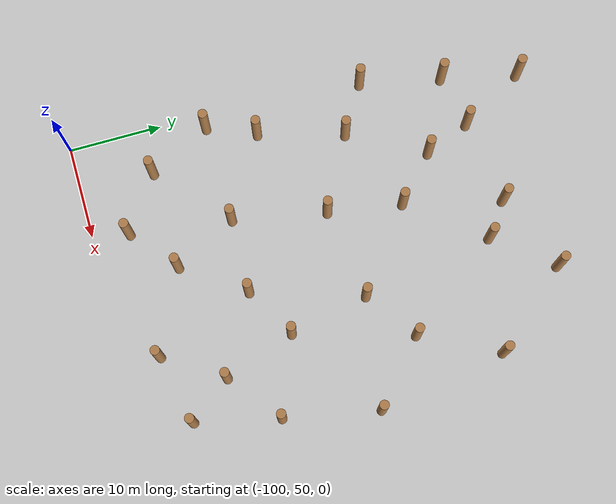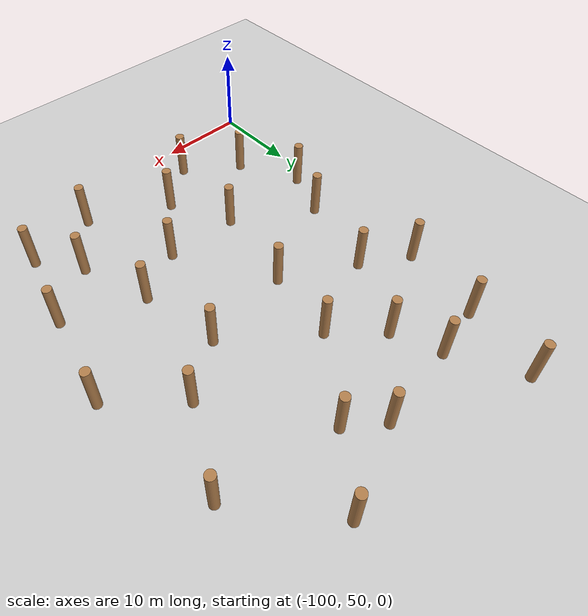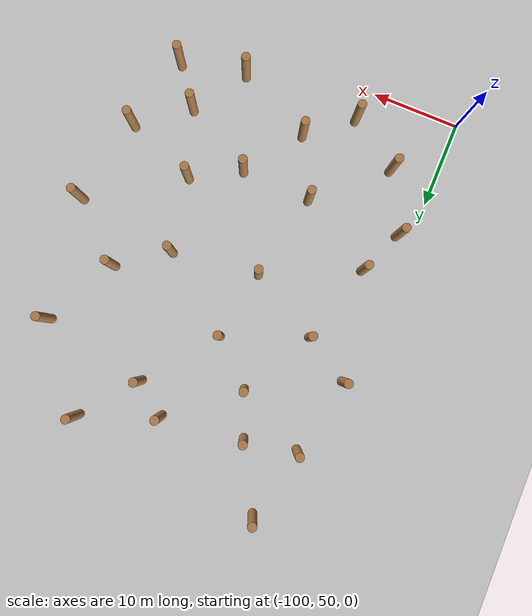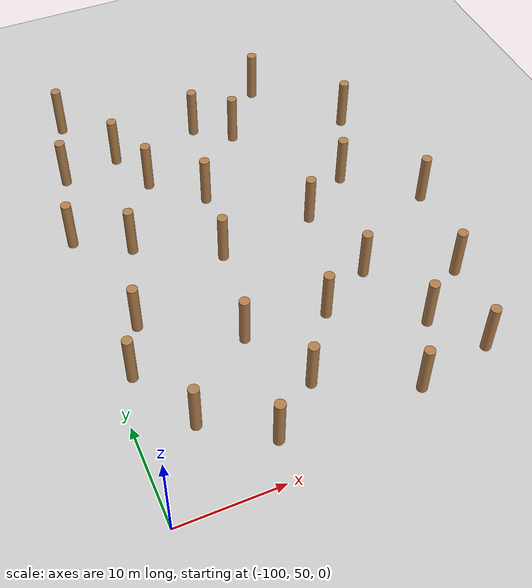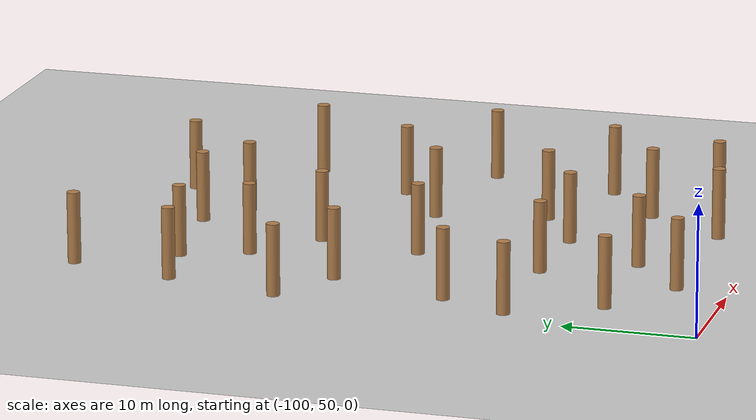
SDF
<sdf version="1.6">
 <world name="default">
  <model name="ground_plane">
   <static>1</static>
   <link name="link">
    <collision name="collision">
     <geometry><plane><normal>0 0 1</normal><size>100 100</size></plane></geometry>
     <surface><friction><ode><mu>100</mu><mu2>50</mu2></ode></friction></surface>
    </collision>
    <visual name="visual">
     <cast_shadows>0</cast_shadows>
     <geometry><plane><normal>0 0 1</normal><size>100 100</size></plane></geometry>
     <material>
      <script><uri>file://media/materials/scripts/gazebo.material</uri><name>Gazebo/Grey</name></script>
     </material>
    </visual>
   </link>
  </model>
  <model name="WoodPillars">
   <link name="link">
    <inertial>
     <mass>1</mass>
     <inertia><ixx>0.145833</ixx><ixy>0</ixy><ixz>0</ixz><iyy>0.145833</iyy><iyz>0</iyz><izz>0.125</izz></inertia>
    </inertial>
    <visual name="visual">
     <geometry><cylinder><radius>0.5</radius><length>5.50507</length></cylinder></geometry>
     <material>
      <script><name>Gazebo/Wood</name><uri>file://media/materials/scripts/gazebo.material</uri></script>
     </material>
    </visual>
    <collision name="collision">
     <geometry><cylinder><radius>0.5</radius><length>5.50507</length></cylinder></geometry>
     <surface>
      <friction>
       <ode><mu>1</mu><mu2>1</mu2><fdir1>0 0 0</fdir1><slip1>0</slip1><slip2>0</slip2></ode>
       <torsional>
        <coefficient>1</coefficient>
        <patch_radius>0</patch_radius>
        <surface_radius>0</surface_radius>
        <use_patch_radius>1</use_patch_radius>
        <ode><slip>0</slip></ode>
       </torsional>
      </friction>
      <bounce><restitution_coefficient>0</restitution_coefficient><threshold>1e+06</threshold></bounce>
      <contact>
       <collide_without_contact>0</collide_without_contact>
       <collide_without_contact_bitmask>1</collide_without_contact_bitmask>
       <collide_bitmask>1</collide_bitmask>
       <ode>
        <soft_cfm>0</soft_cfm>
        <soft_erp>0.2</soft_erp>
        <kp>1e+13</kp>
        <kd>1</kd>
        <max_vel>0.01</max_vel>
        <min_depth>0</min_depth>
       </ode>
       <bullet>
        <split_impulse>1</split_impulse>
        <split_impulse_penetration_threshold>-0.01</split_impulse_penetration_threshold>
        <soft_cfm>0</soft_cfm>
        <soft_erp>0.2</soft_erp>
        <kp>1e+13</kp>
        <kd>1</kd>
       </bullet>
      </contact>
     </surface>
    </collision>
   </link>
   <link name="link_clone">
    <inertial>
     <mass>1</mass>
     <inertia><ixx>0.145833</ixx><ixy>0</ixy><ixz>0</ixz><iyy>0.145833</iyy><iyz>0</iyz><izz>0.125</izz></inertia>
    </inertial>
    <pose>17.6954 -2.91348 -2e-06 0 -0 -0.001289</pose>
    <visual name="visual">
     <geometry><cylinder><radius>0.5</radius><length>5.50507</length></cylinder></geometry>
     <material>
      <script><name>Gazebo/Wood</name><uri>file://media/materials/scripts/gazebo.material</uri></script>
      <shader type="pixel"/>
     </material>
    </visual>
    <collision name="collision">
     <geometry><cylinder><radius>0.5</radius><length>5.50507</length></cylinder></geometry>
     <surface>
      <friction>
       <ode><mu>1</mu><mu2>1</mu2><fdir1>0 0 0</fdir1><slip1>0</slip1><slip2>0</slip2></ode>
       <torsional>
        <coefficient>1</coefficient>
        <patch_radius>0</patch_radius>
        <surface_radius>0</surface_radius>
        <use_patch_radius>1</use_patch_radius>
        <ode><slip>0</slip></ode>
       </torsional>
      </friction>
      <bounce><restitution_coefficient>0</restitution_coefficient><threshold>1e+06</threshold></bounce>
      <contact>
       <collide_without_contact>0</collide_without_contact>
       <collide_without_contact_bitmask>1</collide_without_contact_bitmask>
       <collide_bitmask>1</collide_bitmask>
       <ode>
        <soft_cfm>0</soft_cfm>
        <soft_erp>0.2</soft_erp>
        <kp>1e+13</kp>
        <kd>1</kd>
        <max_vel>0.01</max_vel>
        <min_depth>0</min_depth>
       </ode>
       <bullet>
        <split_impulse>1</split_impulse>
        <split_impulse_penetration_threshold>-0.01</split_impulse_penetration_threshold>
        <soft_cfm>0</soft_cfm>
        <soft_erp>0.2</soft_erp>
        <kp>1e+13</kp>
        <kd>1</kd>
       </bullet>
      </contact>
     </surface>
    </collision>
   </link>
   <link name="link_clone_10">
    <inertial>
     <mass>1</mass>
     <inertia><ixx>0.145833</ixx><ixy>0</ixy><ixz>0</ixz><iyy>0.145833</iyy><iyz>0</iyz><izz>0.125</izz></inertia>
    </inertial>
    <pose>2.50237 12.8939 0 0 -0 -0.001289</pose>
    <visual name="visual">
     <geometry><cylinder><radius>0.5</radius><length>5.50507</length></cylinder></geometry>
     <material>
      <script><name>Gazebo/Wood</name><uri>file://media/materials/scripts/gazebo.material</uri></script>
      <shader type="pixel"/>
     </material>
    </visual>
    <collision name="collision">
     <geometry><cylinder><radius>0.5</radius><length>5.50507</length></cylinder></geometry>
     <surface>
      <friction>
       <ode><mu>1</mu><mu2>1</mu2><fdir1>0 0 0</fdir1><slip1>0</slip1><slip2>0</slip2></ode>
       <torsional>
        <coefficient>1</coefficient>
        <patch_radius>0</patch_radius>
        <surface_radius>0</surface_radius>
        <use_patch_radius>1</use_patch_radius>
        <ode><slip>0</slip></ode>
       </torsional>
      </friction>
      <bounce><restitution_coefficient>0</restitution_coefficient><threshold>1e+06</threshold></bounce>
      <contact>
       <collide_without_contact>0</collide_without_contact>
       <collide_without_contact_bitmask>1</collide_without_contact_bitmask>
       <collide_bitmask>1</collide_bitmask>
       <ode>
        <soft_cfm>0</soft_cfm>
        <soft_erp>0.2</soft_erp>
        <kp>1e+13</kp>
        <kd>1</kd>
        <max_vel>0.01</max_vel>
        <min_depth>0</min_depth>
       </ode>
       <bullet>
        <split_impulse>1</split_impulse>
        <split_impulse_penetration_threshold>-0.01</split_impulse_penetration_threshold>
        <soft_cfm>0</soft_cfm>
        <soft_erp>0.2</soft_erp>
        <kp>1e+13</kp>
        <kd>1</kd>
       </bullet>
      </contact>
     </surface>
    </collision>
   </link>
   <link name="link_clone_11">
    <inertial>
     <mass>1</mass>
     <inertia><ixx>0.145833</ixx><ixy>0</ixy><ixz>0</ixz><iyy>0.145833</iyy><iyz>0</iyz><izz>0.125</izz></inertia>
    </inertial>
    <pose>20.1245 17.4079 -2e-06 0 -0 -0.001289</pose>
    <visual name="visual">
     <geometry><cylinder><radius>0.5</radius><length>5.50507</length></cylinder></geometry>
     <material>
      <script><name>Gazebo/Wood</name><uri>file://media/materials/scripts/gazebo.material</uri></script>
      <shader type="pixel"/>
     </material>
    </visual>
    <collision name="collision">
     <geometry><cylinder><radius>0.5</radius><length>5.50507</length></cylinder></geometry>
     <surface>
      <friction>
       <ode><mu>1</mu><mu2>1</mu2><fdir1>0 0 0</fdir1><slip1>0</slip1><slip2>0</slip2></ode>
       <torsional>
        <coefficient>1</coefficient>
        <patch_radius>0</patch_radius>
        <surface_radius>0</surface_radius>
        <use_patch_radius>1</use_patch_radius>
        <ode><slip>0</slip></ode>
       </torsional>
      </friction>
      <bounce><restitution_coefficient>0</restitution_coefficient><threshold>1e+06</threshold></bounce>
      <contact>
       <collide_without_contact>0</collide_without_contact>
       <collide_without_contact_bitmask>1</collide_without_contact_bitmask>
       <collide_bitmask>1</collide_bitmask>
       <ode>
        <soft_cfm>0</soft_cfm>
        <soft_erp>0.2</soft_erp>
        <kp>1e+13</kp>
        <kd>1</kd>
        <max_vel>0.01</max_vel>
        <min_depth>0</min_depth>
       </ode>
       <bullet>
        <split_impulse>1</split_impulse>
        <split_impulse_penetration_threshold>-0.01</split_impulse_penetration_threshold>
        <soft_cfm>0</soft_cfm>
        <soft_erp>0.2</soft_erp>
        <kp>1e+13</kp>
        <kd>1</kd>
       </bullet>
      </contact>
     </surface>
    </collision>
   </link>
   <link name="link_clone_14">
    <inertial>
     <mass>1</mass>
     <inertia><ixx>0.145833</ixx><ixy>0</ixy><ixz>0</ixz><iyy>0.145833</iyy><iyz>0</iyz><izz>0.125</izz></inertia>
    </inertial>
    <pose>9.31461 -20.9997 -1e-06 0 -0 -0.001289</pose>
    <visual name="visual">
     <geometry><cylinder><radius>0.5</radius><length>5.50507</length></cylinder></geometry>
     <material>
      <script><name>Gazebo/Wood</name><uri>file://media/materials/scripts/gazebo.material</uri></script>
      <shader type="pixel"/>
     </material>
    </visual>
    <collision name="collision">
     <geometry><cylinder><radius>0.5</radius><length>5.50507</length></cylinder></geometry>
     <surface>
      <friction>
       <ode><mu>1</mu><mu2>1</mu2><fdir1>0 0 0</fdir1><slip1>0</slip1><slip2>0</slip2></ode>
       <torsional>
        <coefficient>1</coefficient>
        <patch_radius>0</patch_radius>
        <surface_radius>0</surface_radius>
        <use_patch_radius>1</use_patch_radius>
        <ode><slip>0</slip></ode>
       </torsional>
      </friction>
      <bounce><restitution_coefficient>0</restitution_coefficient><threshold>1e+06</threshold></bounce>
      <contact>
       <collide_without_contact>0</collide_without_contact>
       <collide_without_contact_bitmask>1</collide_without_contact_bitmask>
       <collide_bitmask>1</collide_bitmask>
       <ode>
        <soft_cfm>0</soft_cfm>
        <soft_erp>0.2</soft_erp>
        <kp>1e+13</kp>
        <kd>1</kd>
        <max_vel>0.01</max_vel>
        <min_depth>0</min_depth>
       </ode>
       <bullet>
        <split_impulse>1</split_impulse>
        <split_impulse_penetration_threshold>-0.01</split_impulse_penetration_threshold>
        <soft_cfm>0</soft_cfm>
        <soft_erp>0.2</soft_erp>
        <kp>1e+13</kp>
        <kd>1</kd>
       </bullet>
      </contact>
     </surface>
    </collision>
   </link>
   <link name="link_clone_15">
    <inertial>
     <mass>1</mass>
     <inertia><ixx>0.145833</ixx><ixy>0</ixy><ixz>0</ixz><iyy>0.145833</iyy><iyz>0</iyz><izz>0.125</izz></inertia>
    </inertial>
    <pose>17.9894 -25.1945 -2e-06 0 -0 -0.001289</pose>
    <visual name="visual">
     <geometry><cylinder><radius>0.5</radius><length>5.50507</length></cylinder></geometry>
     <material>
      <script><name>Gazebo/Wood</name><uri>file://media/materials/scripts/gazebo.material</uri></script>
      <shader type="pixel"/>
     </material>
    </visual>
    <collision name="collision">
     <geometry><cylinder><radius>0.5</radius><length>5.50507</length></cylinder></geometry>
     <surface>
      <friction>
       <ode><mu>1</mu><mu2>1</mu2><fdir1>0 0 0</fdir1><slip1>0</slip1><slip2>0</slip2></ode>
       <torsional>
        <coefficient>1</coefficient>
        <patch_radius>0</patch_radius>
        <surface_radius>0</surface_radius>
        <use_patch_radius>1</use_patch_radius>
        <ode><slip>0</slip></ode>
       </torsional>
      </friction>
      <bounce><restitution_coefficient>0</restitution_coefficient><threshold>1e+06</threshold></bounce>
      <contact>
       <collide_without_contact>0</collide_without_contact>
       <collide_without_contact_bitmask>1</collide_without_contact_bitmask>
       <collide_bitmask>1</collide_bitmask>
       <ode>
        <soft_cfm>0</soft_cfm>
        <soft_erp>0.2</soft_erp>
        <kp>1e+13</kp>
        <kd>1</kd>
        <max_vel>0.01</max_vel>
        <min_depth>0</min_depth>
       </ode>
       <bullet>
        <split_impulse>1</split_impulse>
        <split_impulse_penetration_threshold>-0.01</split_impulse_penetration_threshold>
        <soft_cfm>0</soft_cfm>
        <soft_erp>0.2</soft_erp>
        <kp>1e+13</kp>
        <kd>1</kd>
       </bullet>
      </contact>
     </surface>
    </collision>
   </link>
   <link name="link_clone_17">
    <inertial>
     <mass>1</mass>
     <inertia><ixx>0.145833</ixx><ixy>0</ixy><ixz>0</ixz><iyy>0.145833</iyy><iyz>0</iyz><izz>0.125</izz></inertia>
    </inertial>
    <pose>19.3784 -11.4604 -2e-06 0 -0 -0.001289</pose>
    <visual name="visual">
     <geometry><cylinder><radius>0.5</radius><length>5.50507</length></cylinder></geometry>
     <material>
      <script><name>Gazebo/Wood</name><uri>file://media/materials/scripts/gazebo.material</uri></script>
      <shader type="pixel"/>
     </material>
    </visual>
    <collision name="collision">
     <geometry><cylinder><radius>0.5</radius><length>5.50507</length></cylinder></geometry>
     <surface>
      <friction>
       <ode><mu>1</mu><mu2>1</mu2><fdir1>0 0 0</fdir1><slip1>0</slip1><slip2>0</slip2></ode>
       <torsional>
        <coefficient>1</coefficient>
        <patch_radius>0</patch_radius>
        <surface_radius>0</surface_radius>
        <use_patch_radius>1</use_patch_radius>
        <ode><slip>0</slip></ode>
       </torsional>
      </friction>
      <bounce><restitution_coefficient>0</restitution_coefficient><threshold>1e+06</threshold></bounce>
      <contact>
       <collide_without_contact>0</collide_without_contact>
       <collide_without_contact_bitmask>1</collide_without_contact_bitmask>
       <collide_bitmask>1</collide_bitmask>
       <ode>
        <soft_cfm>0</soft_cfm>
        <soft_erp>0.2</soft_erp>
        <kp>1e+13</kp>
        <kd>1</kd>
        <max_vel>0.01</max_vel>
        <min_depth>0</min_depth>
       </ode>
       <bullet>
        <split_impulse>1</split_impulse>
        <split_impulse_penetration_threshold>-0.01</split_impulse_penetration_threshold>
        <soft_cfm>0</soft_cfm>
        <soft_erp>0.2</soft_erp>
        <kp>1e+13</kp>
        <kd>1</kd>
       </bullet>
      </contact>
     </surface>
    </collision>
   </link>
   <link name="link_clone_18">
    <inertial>
     <mass>1</mass>
     <inertia><ixx>0.145833</ixx><ixy>0</ixy><ixz>0</ixz><iyy>0.145833</iyy><iyz>0</iyz><izz>0.125</izz></inertia>
    </inertial>
    <pose>9.1573 3.67739 -1e-06 0 -0 -0.001289</pose>
    <visual name="visual">
     <geometry><cylinder><radius>0.5</radius><length>5.50507</length></cylinder></geometry>
     <material>
      <script><name>Gazebo/Wood</name><uri>file://media/materials/scripts/gazebo.material</uri></script>
      <shader type="pixel"/>
     </material>
    </visual>
    <collision name="collision">
     <geometry><cylinder><radius>0.5</radius><length>5.50507</length></cylinder></geometry>
     <surface>
      <friction>
       <ode><mu>1</mu><mu2>1</mu2><fdir1>0 0 0</fdir1><slip1>0</slip1><slip2>0</slip2></ode>
       <torsional>
        <coefficient>1</coefficient>
        <patch_radius>0</patch_radius>
        <surface_radius>0</surface_radius>
        <use_patch_radius>1</use_patch_radius>
        <ode><slip>0</slip></ode>
       </torsional>
      </friction>
      <bounce><restitution_coefficient>0</restitution_coefficient><threshold>1e+06</threshold></bounce>
      <contact>
       <collide_without_contact>0</collide_without_contact>
       <collide_without_contact_bitmask>1</collide_without_contact_bitmask>
       <collide_bitmask>1</collide_bitmask>
       <ode>
        <soft_cfm>0</soft_cfm>
        <soft_erp>0.2</soft_erp>
        <kp>1e+13</kp>
        <kd>1</kd>
        <max_vel>0.01</max_vel>
        <min_depth>0</min_depth>
       </ode>
       <bullet>
        <split_impulse>1</split_impulse>
        <split_impulse_penetration_threshold>-0.01</split_impulse_penetration_threshold>
        <soft_cfm>0</soft_cfm>
        <soft_erp>0.2</soft_erp>
        <kp>1e+13</kp>
        <kd>1</kd>
       </bullet>
      </contact>
     </surface>
    </collision>
   </link>
   <link name="link_clone_19">
    <inertial>
     <mass>1</mass>
     <inertia><ixx>0.145833</ixx><ixy>0</ixy><ixz>0</ixz><iyy>0.145833</iyy><iyz>0</iyz><izz>0.125</izz></inertia>
    </inertial>
    <pose>-3.28611 11.8265 -0 0 -0 -0.001289</pose>
    <visual name="visual">
     <geometry><cylinder><radius>0.5</radius><length>5.50507</length></cylinder></geometry>
     <material>
      <script><name>Gazebo/Wood</name><uri>file://media/materials/scripts/gazebo.material</uri></script>
      <shader type="pixel"/>
     </material>
    </visual>
    <collision name="collision">
     <geometry><cylinder><radius>0.5</radius><length>5.50507</length></cylinder></geometry>
     <surface>
      <friction>
       <ode><mu>1</mu><mu2>1</mu2><fdir1>0 0 0</fdir1><slip1>0</slip1><slip2>0</slip2></ode>
       <torsional>
        <coefficient>1</coefficient>
        <patch_radius>0</patch_radius>
        <surface_radius>0</surface_radius>
        <use_patch_radius>1</use_patch_radius>
        <ode><slip>0</slip></ode>
       </torsional>
      </friction>
      <bounce><restitution_coefficient>0</restitution_coefficient><threshold>1e+06</threshold></bounce>
      <contact>
       <collide_without_contact>0</collide_without_contact>
       <collide_without_contact_bitmask>1</collide_without_contact_bitmask>
       <collide_bitmask>1</collide_bitmask>
       <ode>
        <soft_cfm>0</soft_cfm>
        <soft_erp>0.2</soft_erp>
        <kp>1e+13</kp>
        <kd>1</kd>
        <max_vel>0.01</max_vel>
        <min_depth>0</min_depth>
       </ode>
       <bullet>
        <split_impulse>1</split_impulse>
        <split_impulse_penetration_threshold>-0.01</split_impulse_penetration_threshold>
        <soft_cfm>0</soft_cfm>
        <soft_erp>0.2</soft_erp>
        <kp>1e+13</kp>
        <kd>1</kd>
       </bullet>
      </contact>
     </surface>
    </collision>
   </link>
   <link name="link_clone_20">
    <inertial>
     <mass>1</mass>
     <inertia><ixx>0.145833</ixx><ixy>0</ixy><ixz>0</ixz><iyy>0.145833</iyy><iyz>0</iyz><izz>0.125</izz></inertia>
    </inertial>
    <pose>-2.64423 -9.12396 -0 0 -0 -0.001289</pose>
    <visual name="visual">
     <geometry><cylinder><radius>0.5</radius><length>5.50507</length></cylinder></geometry>
     <material>
      <script><name>Gazebo/Wood</name><uri>file://media/materials/scripts/gazebo.material</uri></script>
      <shader type="pixel"/>
     </material>
    </visual>
    <collision name="collision">
     <geometry><cylinder><radius>0.5</radius><length>5.50507</length></cylinder></geometry>
     <surface>
      <friction>
       <ode><mu>1</mu><mu2>1</mu2><fdir1>0 0 0</fdir1><slip1>0</slip1><slip2>0</slip2></ode>
       <torsional>
        <coefficient>1</coefficient>
        <patch_radius>0</patch_radius>
        <surface_radius>0</surface_radius>
        <use_patch_radius>1</use_patch_radius>
        <ode><slip>0</slip></ode>
       </torsional>
      </friction>
      <bounce><restitution_coefficient>0</restitution_coefficient><threshold>1e+06</threshold></bounce>
      <contact>
       <collide_without_contact>0</collide_without_contact>
       <collide_without_contact_bitmask>1</collide_without_contact_bitmask>
       <collide_bitmask>1</collide_bitmask>
       <ode>
        <soft_cfm>0</soft_cfm>
        <soft_erp>0.2</soft_erp>
        <kp>1e+13</kp>
        <kd>1</kd>
        <max_vel>0.01</max_vel>
        <min_depth>0</min_depth>
       </ode>
       <bullet>
        <split_impulse>1</split_impulse>
        <split_impulse_penetration_threshold>-0.01</split_impulse_penetration_threshold>
        <soft_cfm>0</soft_cfm>
        <soft_erp>0.2</soft_erp>
        <kp>1e+13</kp>
        <kd>1</kd>
       </bullet>
      </contact>
     </surface>
    </collision>
   </link>
   <link name="link_clone_21">
    <inertial>
     <mass>1</mass>
     <inertia><ixx>0.145833</ixx><ixy>0</ixy><ixz>0</ixz><iyy>0.145833</iyy><iyz>0</iyz><izz>0.125</izz></inertia>
    </inertial>
    <pose>15.2748 11.406 -1e-06 0 -0 -0.001289</pose>
    <visual name="visual">
     <geometry><cylinder><radius>0.5</radius><length>5.50507</length></cylinder></geometry>
     <material>
      <script><name>Gazebo/Wood</name><uri>file://media/materials/scripts/gazebo.material</uri></script>
      <shader type="pixel"/>
     </material>
    </visual>
    <collision name="collision">
     <geometry><cylinder><radius>0.5</radius><length>5.50507</length></cylinder></geometry>
     <surface>
      <friction>
       <ode><mu>1</mu><mu2>1</mu2><fdir1>0 0 0</fdir1><slip1>0</slip1><slip2>0</slip2></ode>
       <torsional>
        <coefficient>1</coefficient>
        <patch_radius>0</patch_radius>
        <surface_radius>0</surface_radius>
        <use_patch_radius>1</use_patch_radius>
        <ode><slip>0</slip></ode>
       </torsional>
      </friction>
      <bounce><restitution_coefficient>0</restitution_coefficient><threshold>1e+06</threshold></bounce>
      <contact>
       <collide_without_contact>0</collide_without_contact>
       <collide_without_contact_bitmask>1</collide_without_contact_bitmask>
       <collide_bitmask>1</collide_bitmask>
       <ode>
        <soft_cfm>0</soft_cfm>
        <soft_erp>0.2</soft_erp>
        <kp>1e+13</kp>
        <kd>1</kd>
        <max_vel>0.01</max_vel>
        <min_depth>0</min_depth>
       </ode>
       <bullet>
        <split_impulse>1</split_impulse>
        <split_impulse_penetration_threshold>-0.01</split_impulse_penetration_threshold>
        <soft_cfm>0</soft_cfm>
        <soft_erp>0.2</soft_erp>
        <kp>1e+13</kp>
        <kd>1</kd>
       </bullet>
      </contact>
     </surface>
    </collision>
   </link>
   <link name="link_clone_22">
    <inertial>
     <mass>1</mass>
     <inertia><ixx>0.145833</ixx><ixy>0</ixy><ixz>0</ixz><iyy>0.145833</iyy><iyz>0</iyz><izz>0.125</izz></inertia>
    </inertial>
    <pose>27.313 9.05961 -2e-06 0 -0 -0.001289</pose>
    <visual name="visual">
     <geometry><cylinder><radius>0.5</radius><length>5.50507</length></cylinder></geometry>
     <material>
      <script><name>Gazebo/Wood</name><uri>file://media/materials/scripts/gazebo.material</uri></script>
      <shader type="pixel"/>
     </material>
    </visual>
    <collision name="collision">
     <geometry><cylinder><radius>0.5</radius><length>5.50507</length></cylinder></geometry>
     <surface>
      <friction>
       <ode><mu>1</mu><mu2>1</mu2><fdir1>0 0 0</fdir1><slip1>0</slip1><slip2>0</slip2></ode>
       <torsional>
        <coefficient>1</coefficient>
        <patch_radius>0</patch_radius>
        <surface_radius>0</surface_radius>
        <use_patch_radius>1</use_patch_radius>
        <ode><slip>0</slip></ode>
       </torsional>
      </friction>
      <bounce><restitution_coefficient>0</restitution_coefficient><threshold>1e+06</threshold></bounce>
      <contact>
       <collide_without_contact>0</collide_without_contact>
       <collide_without_contact_bitmask>1</collide_without_contact_bitmask>
       <collide_bitmask>1</collide_bitmask>
       <ode>
        <soft_cfm>0</soft_cfm>
        <soft_erp>0.2</soft_erp>
        <kp>1e+13</kp>
        <kd>1</kd>
        <max_vel>0.01</max_vel>
        <min_depth>0</min_depth>
       </ode>
       <bullet>
        <split_impulse>1</split_impulse>
        <split_impulse_penetration_threshold>-0.01</split_impulse_penetration_threshold>
        <soft_cfm>0</soft_cfm>
        <soft_erp>0.2</soft_erp>
        <kp>1e+13</kp>
        <kd>1</kd>
       </bullet>
      </contact>
     </surface>
    </collision>
   </link>
   <link name="link_clone_23">
    <inertial>
     <mass>1</mass>
     <inertia><ixx>0.145833</ixx><ixy>0</ixy><ixz>0</ixz><iyy>0.145833</iyy><iyz>0</iyz><izz>0.125</izz></inertia>
    </inertial>
    <pose>29.5176 -4.71623 -3e-06 0 -0 -0.001289</pose>
    <visual name="visual">
     <geometry><cylinder><radius>0.5</radius><length>5.50507</length></cylinder></geometry>
     <material>
      <script><name>Gazebo/Wood</name><uri>file://media/materials/scripts/gazebo.material</uri></script>
      <shader type="pixel"/>
     </material>
    </visual>
    <collision name="collision">
     <geometry><cylinder><radius>0.5</radius><length>5.50507</length></cylinder></geometry>
     <surface>
      <friction>
       <ode><mu>1</mu><mu2>1</mu2><fdir1>0 0 0</fdir1><slip1>0</slip1><slip2>0</slip2></ode>
       <torsional>
        <coefficient>1</coefficient>
        <patch_radius>0</patch_radius>
        <surface_radius>0</surface_radius>
        <use_patch_radius>1</use_patch_radius>
        <ode><slip>0</slip></ode>
       </torsional>
      </friction>
      <bounce><restitution_coefficient>0</restitution_coefficient><threshold>1e+06</threshold></bounce>
      <contact>
       <collide_without_contact>0</collide_without_contact>
       <collide_without_contact_bitmask>1</collide_without_contact_bitmask>
       <collide_bitmask>1</collide_bitmask>
       <ode>
        <soft_cfm>0</soft_cfm>
        <soft_erp>0.2</soft_erp>
        <kp>1e+13</kp>
        <kd>1</kd>
        <max_vel>0.01</max_vel>
        <min_depth>0</min_depth>
       </ode>
       <bullet>
        <split_impulse>1</split_impulse>
        <split_impulse_penetration_threshold>-0.01</split_impulse_penetration_threshold>
        <soft_cfm>0</soft_cfm>
        <soft_erp>0.2</soft_erp>
        <kp>1e+13</kp>
        <kd>1</kd>
       </bullet>
      </contact>
     </surface>
    </collision>
   </link>
   <link name="link_clone_24">
    <inertial>
     <mass>1</mass>
     <inertia><ixx>0.145833</ixx><ixy>0</ixy><ixz>0</ixz><iyy>0.145833</iyy><iyz>0</iyz><izz>0.125</izz></inertia>
    </inertial>
    <pose>7.84688 -4.26113 -1e-06 0 -0 -0.001289</pose>
    <visual name="visual">
     <geometry><cylinder><radius>0.5</radius><length>5.50507</length></cylinder></geometry>
     <material>
      <script><name>Gazebo/Wood</name><uri>file://media/materials/scripts/gazebo.material</uri></script>
      <shader type="pixel"/>
     </material>
    </visual>
    <collision name="collision">
     <geometry><cylinder><radius>0.5</radius><length>5.50507</length></cylinder></geometry>
     <surface>
      <friction>
       <ode><mu>1</mu><mu2>1</mu2><fdir1>0 0 0</fdir1><slip1>0</slip1><slip2>0</slip2></ode>
       <torsional>
        <coefficient>1</coefficient>
        <patch_radius>0</patch_radius>
        <surface_radius>0</surface_radius>
        <use_patch_radius>1</use_patch_radius>
        <ode><slip>0</slip></ode>
       </torsional>
      </friction>
      <bounce><restitution_coefficient>0</restitution_coefficient><threshold>1e+06</threshold></bounce>
      <contact>
       <collide_without_contact>0</collide_without_contact>
       <collide_without_contact_bitmask>1</collide_without_contact_bitmask>
       <collide_bitmask>1</collide_bitmask>
       <ode>
        <soft_cfm>0</soft_cfm>
        <soft_erp>0.2</soft_erp>
        <kp>1e+13</kp>
        <kd>1</kd>
        <max_vel>0.01</max_vel>
        <min_depth>0</min_depth>
       </ode>
       <bullet>
        <split_impulse>1</split_impulse>
        <split_impulse_penetration_threshold>-0.01</split_impulse_penetration_threshold>
        <soft_cfm>0</soft_cfm>
        <soft_erp>0.2</soft_erp>
        <kp>1e+13</kp>
        <kd>1</kd>
       </bullet>
      </contact>
     </surface>
    </collision>
   </link>
   <link name="link_clone_25">
    <inertial>
     <mass>1</mass>
     <inertia><ixx>0.145833</ixx><ixy>0</ixy><ixz>0</ixz><iyy>0.145833</iyy><iyz>0</iyz><izz>0.125</izz></inertia>
    </inertial>
    <pose>11.7271 14.0632 -1e-06 0 -0 -0.001289</pose>
    <visual name="visual">
     <geometry><cylinder><radius>0.5</radius><length>5.50507</length></cylinder></geometry>
     <material>
      <script><name>Gazebo/Wood</name><uri>file://media/materials/scripts/gazebo.material</uri></script>
      <shader type="pixel"/>
     </material>
    </visual>
    <collision name="collision">
     <geometry><cylinder><radius>0.5</radius><length>5.50507</length></cylinder></geometry>
     <surface>
      <friction>
       <ode><mu>1</mu><mu2>1</mu2><fdir1>0 0 0</fdir1><slip1>0</slip1><slip2>0</slip2></ode>
       <torsional>
        <coefficient>1</coefficient>
        <patch_radius>0</patch_radius>
        <surface_radius>0</surface_radius>
        <use_patch_radius>1</use_patch_radius>
        <ode><slip>0</slip></ode>
       </torsional>
      </friction>
      <bounce><restitution_coefficient>0</restitution_coefficient><threshold>1e+06</threshold></bounce>
      <contact>
       <collide_without_contact>0</collide_without_contact>
       <collide_without_contact_bitmask>1</collide_without_contact_bitmask>
       <collide_bitmask>1</collide_bitmask>
       <ode>
        <soft_cfm>0</soft_cfm>
        <soft_erp>0.2</soft_erp>
        <kp>1e+13</kp>
        <kd>1</kd>
        <max_vel>0.01</max_vel>
        <min_depth>0</min_depth>
       </ode>
       <bullet>
        <split_impulse>1</split_impulse>
        <split_impulse_penetration_threshold>-0.01</split_impulse_penetration_threshold>
        <soft_cfm>0</soft_cfm>
        <soft_erp>0.2</soft_erp>
        <kp>1e+13</kp>
        <kd>1</kd>
       </bullet>
      </contact>
     </surface>
    </collision>
   </link>
   <link name="link_clone_26">
    <inertial>
     <mass>1</mass>
     <inertia><ixx>0.145833</ixx><ixy>0</ixy><ixz>0</ixz><iyy>0.145833</iyy><iyz>0</iyz><izz>0.125</izz></inertia>
    </inertial>
    <pose>13.9187 -14.5508 -1e-06 0 -0 -0.001289</pose>
    <visual name="visual">
     <geometry><cylinder><radius>0.5</radius><length>5.50507</length></cylinder></geometry>
     <material>
      <script><name>Gazebo/Wood</name><uri>file://media/materials/scripts/gazebo.material</uri></script>
      <shader type="pixel"/>
     </material>
    </visual>
    <collision name="collision">
     <geometry><cylinder><radius>0.5</radius><length>5.50507</length></cylinder></geometry>
     <surface>
      <friction>
       <ode><mu>1</mu><mu2>1</mu2><fdir1>0 0 0</fdir1><slip1>0</slip1><slip2>0</slip2></ode>
       <torsional>
        <coefficient>1</coefficient>
        <patch_radius>0</patch_radius>
        <surface_radius>0</surface_radius>
        <use_patch_radius>1</use_patch_radius>
        <ode><slip>0</slip></ode>
       </torsional>
      </friction>
      <bounce><restitution_coefficient>0</restitution_coefficient><threshold>1e+06</threshold></bounce>
      <contact>
       <collide_without_contact>0</collide_without_contact>
       <collide_without_contact_bitmask>1</collide_without_contact_bitmask>
       <collide_bitmask>1</collide_bitmask>
       <ode>
        <soft_cfm>0</soft_cfm>
        <soft_erp>0.2</soft_erp>
        <kp>1e+13</kp>
        <kd>1</kd>
        <max_vel>0.01</max_vel>
        <min_depth>0</min_depth>
       </ode>
       <bullet>
        <split_impulse>1</split_impulse>
        <split_impulse_penetration_threshold>-0.01</split_impulse_penetration_threshold>
        <soft_cfm>0</soft_cfm>
        <soft_erp>0.2</soft_erp>
        <kp>1e+13</kp>
        <kd>1</kd>
       </bullet>
      </contact>
     </surface>
    </collision>
   </link>
   <link name="link_clone_27">
    <inertial>
     <mass>1</mass>
     <inertia><ixx>0.145833</ixx><ixy>0</ixy><ixz>0</ixz><iyy>0.145833</iyy><iyz>0</iyz><izz>0.125</izz></inertia>
    </inertial>
    <pose>4.38632 -25.0605 -1e-06 0 -0 -0.001289</pose>
    <visual name="visual">
     <geometry><cylinder><radius>0.5</radius><length>5.50507</length></cylinder></geometry>
     <material>
      <script><name>Gazebo/Wood</name><uri>file://media/materials/scripts/gazebo.material</uri></script>
      <shader type="pixel"/>
     </material>
    </visual>
    <collision name="collision">
     <geometry><cylinder><radius>0.5</radius><length>5.50507</length></cylinder></geometry>
     <surface>
      <friction>
       <ode><mu>1</mu><mu2>1</mu2><fdir1>0 0 0</fdir1><slip1>0</slip1><slip2>0</slip2></ode>
       <torsional>
        <coefficient>1</coefficient>
        <patch_radius>0</patch_radius>
        <surface_radius>0</surface_radius>
        <use_patch_radius>1</use_patch_radius>
        <ode><slip>0</slip></ode>
       </torsional>
      </friction>
      <bounce><restitution_coefficient>0</restitution_coefficient><threshold>1e+06</threshold></bounce>
      <contact>
       <collide_without_contact>0</collide_without_contact>
       <collide_without_contact_bitmask>1</collide_without_contact_bitmask>
       <collide_bitmask>1</collide_bitmask>
       <ode>
        <soft_cfm>0</soft_cfm>
        <soft_erp>0.2</soft_erp>
        <kp>1e+13</kp>
        <kd>1</kd>
        <max_vel>0.01</max_vel>
        <min_depth>0</min_depth>
       </ode>
       <bullet>
        <split_impulse>1</split_impulse>
        <split_impulse_penetration_threshold>-0.01</split_impulse_penetration_threshold>
        <soft_cfm>0</soft_cfm>
        <soft_erp>0.2</soft_erp>
        <kp>1e+13</kp>
        <kd>1</kd>
       </bullet>
      </contact>
     </surface>
    </collision>
   </link>
   <link name="link_clone_28">
    <inertial>
     <mass>1</mass>
     <inertia><ixx>0.145833</ixx><ixy>0</ixy><ixz>0</ixz><iyy>0.145833</iyy><iyz>0</iyz><izz>0.125</izz></inertia>
    </inertial>
    <pose>27.5353 -14.766 -3e-06 0 -0 -0.001289</pose>
    <visual name="visual">
     <geometry><cylinder><radius>0.5</radius><length>5.50507</length></cylinder></geometry>
     <material>
      <script><name>Gazebo/Wood</name><uri>file://media/materials/scripts/gazebo.material</uri></script>
      <shader type="pixel"/>
     </material>
    </visual>
    <collision name="collision">
     <geometry><cylinder><radius>0.5</radius><length>5.50507</length></cylinder></geometry>
     <surface>
      <friction>
       <ode><mu>1</mu><mu2>1</mu2><fdir1>0 0 0</fdir1><slip1>0</slip1><slip2>0</slip2></ode>
       <torsional>
        <coefficient>1</coefficient>
        <patch_radius>0</patch_radius>
        <surface_radius>0</surface_radius>
        <use_patch_radius>1</use_patch_radius>
        <ode><slip>0</slip></ode>
       </torsional>
      </friction>
      <bounce><restitution_coefficient>0</restitution_coefficient><threshold>1e+06</threshold></bounce>
      <contact>
       <collide_without_contact>0</collide_without_contact>
       <collide_without_contact_bitmask>1</collide_without_contact_bitmask>
       <collide_bitmask>1</collide_bitmask>
       <ode>
        <soft_cfm>0</soft_cfm>
        <soft_erp>0.2</soft_erp>
        <kp>1e+13</kp>
        <kd>1</kd>
        <max_vel>0.01</max_vel>
        <min_depth>0</min_depth>
       </ode>
       <bullet>
        <split_impulse>1</split_impulse>
        <split_impulse_penetration_threshold>-0.01</split_impulse_penetration_threshold>
        <soft_cfm>0</soft_cfm>
        <soft_erp>0.2</soft_erp>
        <kp>1e+13</kp>
        <kd>1</kd>
       </bullet>
      </contact>
     </surface>
    </collision>
   </link>
   <link name="link_clone_30">
    <inertial>
     <mass>1</mass>
     <inertia><ixx>0.145833</ixx><ixy>0</ixy><ixz>0</ixz><iyy>0.145833</iyy><iyz>0</iyz><izz>0.125</izz></inertia>
    </inertial>
    <pose>4.46339 7.97492 0 0 -0 -0.001289</pose>
    <visual name="visual">
     <geometry><cylinder><radius>0.5</radius><length>5.50507</length></cylinder></geometry>
     <material>
      <script><name>Gazebo/Wood</name><uri>file://media/materials/scripts/gazebo.material</uri></script>
      <shader type="pixel"/>
     </material>
    </visual>
    <collision name="collision">
     <geometry><cylinder><radius>0.5</radius><length>5.50507</length></cylinder></geometry>
     <surface>
      <friction>
       <ode><mu>1</mu><mu2>1</mu2><fdir1>0 0 0</fdir1><slip1>0</slip1><slip2>0</slip2></ode>
       <torsional>
        <coefficient>1</coefficient>
        <patch_radius>0</patch_radius>
        <surface_radius>0</surface_radius>
        <use_patch_radius>1</use_patch_radius>
        <ode><slip>0</slip></ode>
       </torsional>
      </friction>
      <bounce><restitution_coefficient>0</restitution_coefficient><threshold>1e+06</threshold></bounce>
      <contact>
       <collide_without_contact>0</collide_without_contact>
       <collide_without_contact_bitmask>1</collide_without_contact_bitmask>
       <collide_bitmask>1</collide_bitmask>
       <ode>
        <soft_cfm>0</soft_cfm>
        <soft_erp>0.2</soft_erp>
        <kp>1e+13</kp>
        <kd>1</kd>
        <max_vel>0.01</max_vel>
        <min_depth>0</min_depth>
       </ode>
       <bullet>
        <split_impulse>1</split_impulse>
        <split_impulse_penetration_threshold>-0.01</split_impulse_penetration_threshold>
        <soft_cfm>0</soft_cfm>
        <soft_erp>0.2</soft_erp>
        <kp>1e+13</kp>
        <kd>1</kd>
       </bullet>
      </contact>
     </surface>
    </collision>
   </link>
   <link name="link_clone_31">
    <inertial>
     <mass>1</mass>
     <inertia><ixx>0.145833</ixx><ixy>0</ixy><ixz>0</ixz><iyy>0.145833</iyy><iyz>0</iyz><izz>0.125</izz></inertia>
    </inertial>
    <pose>-1.44135 19.9016 0 0 -0 -0.001289</pose>
    <visual name="visual">
     <geometry><cylinder><radius>0.5</radius><length>5.50507</length></cylinder></geometry>
     <material>
      <script><name>Gazebo/Wood</name><uri>file://media/materials/scripts/gazebo.material</uri></script>
      <shader type="pixel"/>
     </material>
    </visual>
    <collision name="collision">
     <geometry><cylinder><radius>0.5</radius><length>5.50507</length></cylinder></geometry>
     <surface>
      <friction>
       <ode><mu>1</mu><mu2>1</mu2><fdir1>0 0 0</fdir1><slip1>0</slip1><slip2>0</slip2></ode>
       <torsional>
        <coefficient>1</coefficient>
        <patch_radius>0</patch_radius>
        <surface_radius>0</surface_radius>
        <use_patch_radius>1</use_patch_radius>
        <ode><slip>0</slip></ode>
       </torsional>
      </friction>
      <bounce><restitution_coefficient>0</restitution_coefficient><threshold>1e+06</threshold></bounce>
      <contact>
       <collide_without_contact>0</collide_without_contact>
       <collide_without_contact_bitmask>1</collide_without_contact_bitmask>
       <collide_bitmask>1</collide_bitmask>
       <ode>
        <soft_cfm>0</soft_cfm>
        <soft_erp>0.2</soft_erp>
        <kp>1e+13</kp>
        <kd>1</kd>
        <max_vel>0.01</max_vel>
        <min_depth>0</min_depth>
       </ode>
       <bullet>
        <split_impulse>1</split_impulse>
        <split_impulse_penetration_threshold>-0.01</split_impulse_penetration_threshold>
        <soft_cfm>0</soft_cfm>
        <soft_erp>0.2</soft_erp>
        <kp>1e+13</kp>
        <kd>1</kd>
       </bullet>
      </contact>
     </surface>
    </collision>
   </link>
   <link name="link_clone_32">
    <inertial>
     <mass>1</mass>
     <inertia><ixx>0.145833</ixx><ixy>0</ixy><ixz>0</ixz><iyy>0.145833</iyy><iyz>0</iyz><izz>0.125</izz></inertia>
    </inertial>
    <pose>-4.82669 -14.2698 -0 0 -0 -0.001289</pose>
    <visual name="visual">
     <geometry><cylinder><radius>0.5</radius><length>5.50507</length></cylinder></geometry>
     <material>
      <script><name>Gazebo/Wood</name><uri>file://media/materials/scripts/gazebo.material</uri></script>
      <shader type="pixel"/>
     </material>
    </visual>
    <collision name="collision">
     <geometry><cylinder><radius>0.5</radius><length>5.50507</length></cylinder></geometry>
     <surface>
      <friction>
       <ode><mu>1</mu><mu2>1</mu2><fdir1>0 0 0</fdir1><slip1>0</slip1><slip2>0</slip2></ode>
       <torsional>
        <coefficient>1</coefficient>
        <patch_radius>0</patch_radius>
        <surface_radius>0</surface_radius>
        <use_patch_radius>1</use_patch_radius>
        <ode><slip>0</slip></ode>
       </torsional>
      </friction>
      <bounce><restitution_coefficient>0</restitution_coefficient><threshold>1e+06</threshold></bounce>
      <contact>
       <collide_without_contact>0</collide_without_contact>
       <collide_without_contact_bitmask>1</collide_without_contact_bitmask>
       <collide_bitmask>1</collide_bitmask>
       <ode>
        <soft_cfm>0</soft_cfm>
        <soft_erp>0.2</soft_erp>
        <kp>1e+13</kp>
        <kd>1</kd>
        <max_vel>0.01</max_vel>
        <min_depth>0</min_depth>
       </ode>
       <bullet>
        <split_impulse>1</split_impulse>
        <split_impulse_penetration_threshold>-0.01</split_impulse_penetration_threshold>
        <soft_cfm>0</soft_cfm>
        <soft_erp>0.2</soft_erp>
        <kp>1e+13</kp>
        <kd>1</kd>
       </bullet>
      </contact>
     </surface>
    </collision>
   </link>
   <link name="link_clone_34">
    <inertial>
     <mass>1</mass>
     <inertia><ixx>0.145833</ixx><ixy>0</ixy><ixz>0</ixz><iyy>0.145833</iyy><iyz>0</iyz><izz>0.125</izz></inertia>
    </inertial>
    <pose>25.4673 -23.5908 -3e-06 0 -0 -0.001289</pose>
    <visual name="visual">
     <geometry><cylinder><radius>0.5</radius><length>5.50507</length></cylinder></geometry>
     <material>
      <script><name>Gazebo/Wood</name><uri>file://media/materials/scripts/gazebo.material</uri></script>
      <shader type="pixel"/>
     </material>
    </visual>
    <collision name="collision">
     <geometry><cylinder><radius>0.5</radius><length>5.50507</length></cylinder></geometry>
     <surface>
      <friction>
       <ode><mu>1</mu><mu2>1</mu2><fdir1>0 0 0</fdir1><slip1>0</slip1><slip2>0</slip2></ode>
       <torsional>
        <coefficient>1</coefficient>
        <patch_radius>0</patch_radius>
        <surface_radius>0</surface_radius>
        <use_patch_radius>1</use_patch_radius>
        <ode><slip>0</slip></ode>
       </torsional>
      </friction>
      <bounce><restitution_coefficient>0</restitution_coefficient><threshold>1e+06</threshold></bounce>
      <contact>
       <collide_without_contact>0</collide_without_contact>
       <collide_without_contact_bitmask>1</collide_without_contact_bitmask>
       <collide_bitmask>1</collide_bitmask>
       <ode>
        <soft_cfm>0</soft_cfm>
        <soft_erp>0.2</soft_erp>
        <kp>1e+13</kp>
        <kd>1</kd>
        <max_vel>0.01</max_vel>
        <min_depth>0</min_depth>
       </ode>
       <bullet>
        <split_impulse>1</split_impulse>
        <split_impulse_penetration_threshold>-0.01</split_impulse_penetration_threshold>
        <soft_cfm>0</soft_cfm>
        <soft_erp>0.2</soft_erp>
        <kp>1e+13</kp>
        <kd>1</kd>
       </bullet>
      </contact>
     </surface>
    </collision>
   </link>
   <link name="link_clone_35">
    <inertial>
     <mass>1</mass>
     <inertia><ixx>0.145833</ixx><ixy>0</ixy><ixz>0</ixz><iyy>0.145833</iyy><iyz>0</iyz><izz>0.125</izz></inertia>
    </inertial>
    <pose>-5.14728 3.10998 -0 0 -0 -0.001289</pose>
    <visual name="visual">
     <geometry><cylinder><radius>0.5</radius><length>5.50507</length></cylinder></geometry>
     <material>
      <script><name>Gazebo/Wood</name><uri>file://media/materials/scripts/gazebo.material</uri></script>
      <shader type="pixel"/>
     </material>
    </visual>
    <collision name="collision">
     <geometry><cylinder><radius>0.5</radius><length>5.50507</length></cylinder></geometry>
     <surface>
      <friction>
       <ode><mu>1</mu><mu2>1</mu2><fdir1>0 0 0</fdir1><slip1>0</slip1><slip2>0</slip2></ode>
       <torsional>
        <coefficient>1</coefficient>
        <patch_radius>0</patch_radius>
        <surface_radius>0</surface_radius>
        <use_patch_radius>1</use_patch_radius>
        <ode><slip>0</slip></ode>
       </torsional>
      </friction>
      <bounce><restitution_coefficient>0</restitution_coefficient><threshold>1e+06</threshold></bounce>
      <contact>
       <collide_without_contact>0</collide_without_contact>
       <collide_without_contact_bitmask>1</collide_without_contact_bitmask>
       <collide_bitmask>1</collide_bitmask>
       <ode>
        <soft_cfm>0</soft_cfm>
        <soft_erp>0.2</soft_erp>
        <kp>1e+13</kp>
        <kd>1</kd>
        <max_vel>0.01</max_vel>
        <min_depth>0</min_depth>
       </ode>
       <bullet>
        <split_impulse>1</split_impulse>
        <split_impulse_penetration_threshold>-0.01</split_impulse_penetration_threshold>
        <soft_cfm>0</soft_cfm>
        <soft_erp>0.2</soft_erp>
        <kp>1e+13</kp>
        <kd>1</kd>
       </bullet>
      </contact>
     </surface>
    </collision>
   </link>
   <link name="link_clone_4">
    <inertial>
     <mass>1</mass>
     <inertia><ixx>0.145833</ixx><ixy>0</ixy><ixz>0</ixz><iyy>0.145833</iyy><iyz>0</iyz><izz>0.125</izz></inertia>
    </inertial>
    <pose>23.1128 0.93751 -2e-06 0 -0 -0.001289</pose>
    <visual name="visual">
     <geometry><cylinder><radius>0.5</radius><length>5.50507</length></cylinder></geometry>
     <material>
      <script><name>Gazebo/Wood</name><uri>file://media/materials/scripts/gazebo.material</uri></script>
      <shader type="pixel"/>
     </material>
    </visual>
    <collision name="collision">
     <geometry><cylinder><radius>0.5</radius><length>5.50507</length></cylinder></geometry>
     <surface>
      <friction>
       <ode><mu>1</mu><mu2>1</mu2><fdir1>0 0 0</fdir1><slip1>0</slip1><slip2>0</slip2></ode>
       <torsional>
        <coefficient>1</coefficient>
        <patch_radius>0</patch_radius>
        <surface_radius>0</surface_radius>
        <use_patch_radius>1</use_patch_radius>
        <ode><slip>0</slip></ode>
       </torsional>
      </friction>
      <bounce><restitution_coefficient>0</restitution_coefficient><threshold>1e+06</threshold></bounce>
      <contact>
       <collide_without_contact>0</collide_without_contact>
       <collide_without_contact_bitmask>1</collide_without_contact_bitmask>
       <collide_bitmask>1</collide_bitmask>
       <ode>
        <soft_cfm>0</soft_cfm>
        <soft_erp>0.2</soft_erp>
        <kp>1e+13</kp>
        <kd>1</kd>
        <max_vel>0.01</max_vel>
        <min_depth>0</min_depth>
       </ode>
       <bullet>
        <split_impulse>1</split_impulse>
        <split_impulse_penetration_threshold>-0.01</split_impulse_penetration_threshold>
        <soft_cfm>0</soft_cfm>
        <soft_erp>0.2</soft_erp>
        <kp>1e+13</kp>
        <kd>1</kd>
       </bullet>
      </contact>
     </surface>
    </collision>
   </link>
   <link name="link_clone_7">
    <inertial>
     <mass>1</mass>
     <inertia><ixx>0.145833</ixx><ixy>0</ixy><ixz>0</ixz><iyy>0.145833</iyy><iyz>0</iyz><izz>0.125</izz></inertia>
    </inertial>
    <pose>22.0331 -19.0814 -2e-06 0 -0 -0.001289</pose>
    <visual name="visual">
     <geometry><cylinder><radius>0.5</radius><length>5.50507</length></cylinder></geometry>
     <material>
      <script><name>Gazebo/Wood</name><uri>file://media/materials/scripts/gazebo.material</uri></script>
      <shader type="pixel"/>
     </material>
    </visual>
    <collision name="collision">
     <geometry><cylinder><radius>0.5</radius><length>5.50507</length></cylinder></geometry>
     <surface>
      <friction>
       <ode><mu>1</mu><mu2>1</mu2><fdir1>0 0 0</fdir1><slip1>0</slip1><slip2>0</slip2></ode>
       <torsional>
        <coefficient>1</coefficient>
        <patch_radius>0</patch_radius>
        <surface_radius>0</surface_radius>
        <use_patch_radius>1</use_patch_radius>
        <ode><slip>0</slip></ode>
       </torsional>
      </friction>
      <bounce><restitution_coefficient>0</restitution_coefficient><threshold>1e+06</threshold></bounce>
      <contact>
       <collide_without_contact>0</collide_without_contact>
       <collide_without_contact_bitmask>1</collide_without_contact_bitmask>
       <collide_bitmask>1</collide_bitmask>
       <ode>
        <soft_cfm>0</soft_cfm>
        <soft_erp>0.2</soft_erp>
        <kp>1e+13</kp>
        <kd>1</kd>
        <max_vel>0.01</max_vel>
        <min_depth>0</min_depth>
       </ode>
       <bullet>
        <split_impulse>1</split_impulse>
        <split_impulse_penetration_threshold>-0.01</split_impulse_penetration_threshold>
        <soft_cfm>0</soft_cfm>
        <soft_erp>0.2</soft_erp>
        <kp>1e+13</kp>
        <kd>1</kd>
       </bullet>
      </contact>
     </surface>
    </collision>
   </link>
   <link name="link_clone_8">
    <inertial>
     <mass>1</mass>
     <inertia><ixx>0.145833</ixx><ixy>0</ixy><ixz>0</ixz><iyy>0.145833</iyy><iyz>0</iyz><izz>0.125</izz></inertia>
    </inertial>
    <pose>5.87636 -14.2578 -1e-06 0 -0 -0.001289</pose>
    <visual name="visual">
     <geometry><cylinder><radius>0.5</radius><length>5.50507</length></cylinder></geometry>
     <material>
      <script><name>Gazebo/Wood</name><uri>file://media/materials/scripts/gazebo.material</uri></script>
      <shader type="pixel"/>
     </material>
    </visual>
    <collision name="collision">
     <geometry><cylinder><radius>0.5</radius><length>5.50507</length></cylinder></geometry>
     <surface>
      <friction>
       <ode><mu>1</mu><mu2>1</mu2><fdir1>0 0 0</fdir1><slip1>0</slip1><slip2>0</slip2></ode>
       <torsional>
        <coefficient>1</coefficient>
        <patch_radius>0</patch_radius>
        <surface_radius>0</surface_radius>
        <use_patch_radius>1</use_patch_radius>
        <ode><slip>0</slip></ode>
       </torsional>
      </friction>
      <bounce><restitution_coefficient>0</restitution_coefficient><threshold>1e+06</threshold></bounce>
      <contact>
       <collide_without_contact>0</collide_without_contact>
       <collide_without_contact_bitmask>1</collide_without_contact_bitmask>
       <collide_bitmask>1</collide_bitmask>
       <ode>
        <soft_cfm>0</soft_cfm>
        <soft_erp>0.2</soft_erp>
        <kp>1e+13</kp>
        <kd>1</kd>
        <max_vel>0.01</max_vel>
        <min_depth>0</min_depth>
       </ode>
       <bullet>
        <split_impulse>1</split_impulse>
        <split_impulse_penetration_threshold>-0.01</split_impulse_penetration_threshold>
        <soft_cfm>0</soft_cfm>
        <soft_erp>0.2</soft_erp>
        <kp>1e+13</kp>
        <kd>1</kd>
       </bullet>
      </contact>
     </surface>
    </collision>
   </link>
   <link name="link_clone_9">
    <inertial>
     <mass>1</mass>
     <inertia><ixx>0.145833</ixx><ixy>0</ixy><ixz>0</ixz><iyy>0.145833</iyy><iyz>0</iyz><izz>0.125</izz></inertia>
    </inertial>
    <pose>-1.43964 -21.0028 0 0 -0 -0.001289</pose>
    <visual name="visual">
     <geometry><cylinder><radius>0.5</radius><length>5.50507</length></cylinder></geometry>
     <material>
      <script><name>Gazebo/Wood</name><uri>file://media/materials/scripts/gazebo.material</uri></script>
      <shader type="pixel"/>
     </material>
    </visual>
    <collision name="collision">
     <geometry><cylinder><radius>0.5</radius><length>5.50507</length></cylinder></geometry>
     <surface>
      <friction>
       <ode><mu>1</mu><mu2>1</mu2><fdir1>0 0 0</fdir1><slip1>0</slip1><slip2>0</slip2></ode>
       <torsional>
        <coefficient>1</coefficient>
        <patch_radius>0</patch_radius>
        <surface_radius>0</surface_radius>
        <use_patch_radius>1</use_patch_radius>
        <ode><slip>0</slip></ode>
       </torsional>
      </friction>
      <bounce><restitution_coefficient>0</restitution_coefficient><threshold>1e+06</threshold></bounce>
      <contact>
       <collide_without_contact>0</collide_without_contact>
       <collide_without_contact_bitmask>1</collide_without_contact_bitmask>
       <collide_bitmask>1</collide_bitmask>
       <ode>
        <soft_cfm>0</soft_cfm>
        <soft_erp>0.2</soft_erp>
        <kp>1e+13</kp>
        <kd>1</kd>
        <max_vel>0.01</max_vel>
        <min_depth>0</min_depth>
       </ode>
       <bullet>
        <split_impulse>1</split_impulse>
        <split_impulse_penetration_threshold>-0.01</split_impulse_penetration_threshold>
        <soft_cfm>0</soft_cfm>
        <soft_erp>0.2</soft_erp>
        <kp>1e+13</kp>
        <kd>1</kd>
       </bullet>
      </contact>
     </surface>
    </collision>
   </link>
   <static>0</static>
   <pose>-93.4472 79.0245 2.75253 0 -0 0.002245</pose>
  </model>
 </world>
</sdf>
